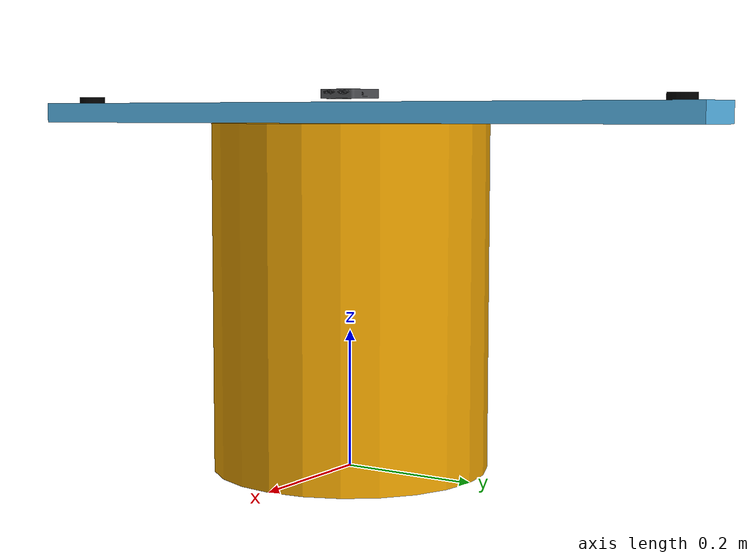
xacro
<?xml version="1.0"?>
<robot xmlns:xacro="http://www.ros.org/wiki/xacro" name="test">
  <!-- Materials to make the antennas stand out from the robot and antenna bar -->
  <material name="black">
    <color rgba="0.0 0.0 0.0 1.0" />
  </material>

  <!-- Include the GQ7 xacro file to make it easier to place -->
  <xacro:include filename="$(find microstrain_inertial_description)/urdf/gq7.urdf.xacro" />

  <!-- Pretend robot (just a cylinder) -->
  <link name="base_link" >
    <visual>
      <origin xyz="0 0 0.25" rpy="0 0 0" />
      <geometry>
        <cylinder length="0.5" radius="0.2" />
      </geometry>
    </visual>
  </link>

  <!-- Antenna bar. Your antenna bar should be between 0.3 and 5.0 meters. 1 to 2 meters is typical -->
  <link name="antenna_bar_link" >
    <visual>
      <geometry>
        <box size="0.1 1.1 0.03" />
      </geometry>
    </visual>
  </link>
  <joint name="base_to_antenna_bar" type="fixed">
    <parent link="base_link" />
    <child link="antenna_bar_link" />
    <origin xyz="0 0 0.515" />
  </joint>

  <!-- Antennas offset from the end of the antenna bar by 5 cm -->
  <link name="right_antenna_link">
    <visual>
      <geometry>
        <cylinder length="0.01" radius="0.02" />
      </geometry>
      <material name="black" />
    </visual>
  </link>
  <link name="left_antenna_link">
    <visual>
      <geometry>
        <cylinder length="0.01" radius="0.02" />
      </geometry>
      <material name="black" />
    </visual>
  </link>
  <joint name="antenna_bar_to_right_antenna" type="fixed">
    <parent link="antenna_bar_link" />
    <child link="right_antenna_link" />
    <origin xyz="0 -0.5 0.02" />
  </joint>
  <joint name="antenna_bar_to_left_antenna" type="fixed">
    <parent link="antenna_bar_link" />
    <child link="left_antenna_link" />
    <origin xyz="0 0.5 0.02" />
  </joint>

  <!-- GQ7 mounted in the center of the antenna bar -->
  <xacro:gq7 parent="antenna_bar_link" name="gq7_link">
    <origin xyz="0 0 0.02" rpy="0 0 0" />
  </xacro:gq7>

  <!-- Lidar mounted on top of the GQ7 -->
  <!-- Remove this before checkin -->
  <link name="lidar3d_0_laser">
  </link>
  <joint name="antenna_bar_to_lidar" type="fixed">
    <parent link="antenna_bar_link" />
    <child link="lidar3d_0_laser" />
    <origin xyz="0 0 0.04" />
  </joint>
</robot>

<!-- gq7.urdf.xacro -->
<robot xmlns:xacro="http://www.ros.org/wiki/xacro">
  <xacro:macro name="gq7" params="name parent *origin">
    <material name="gq7_material">
      <color rgba="${80/255} ${81/255} ${85/255} 1" />
    </material>

    <link name="${name}_center">
      <visual>
        <origin xyz="0 0 0" rpy="1.5708 0 1.5708" />
        <geometry>
          <mesh filename="package://microstrain_inertial_description/meshes/gq7.stl" scale="0.001 0.001 0.001" />
        </geometry>
        <material name="gq7_material"/>
      </visual>
    </link>

    <link name="${name}">
    </link>

    <!-- This joint handles the center of the GQ7, but measurements will not be produced WRT to this, it is just easier to place on robots -->
    <joint name="${name}_center_joint" type="fixed">
      <parent link="${parent}" />
      <child link="${name}_center" />
      <xacro:insert_block name="origin" />
    </joint>

    <!-- This link contains the offset between the center of the GQ7 and the actual sensor origin. Measurements will be reported relative to this -->
    <joint name="${name}_joint" type="fixed">
      <parent link="${name}_center" />
      <child link="${name}" />
      <origin xyz="-0.0222 -0.015585 0.00737" rpy="0 0 0" />
    </joint>
  </xacro:macro>
</robot>
